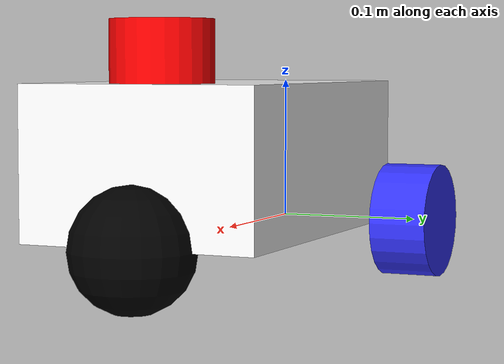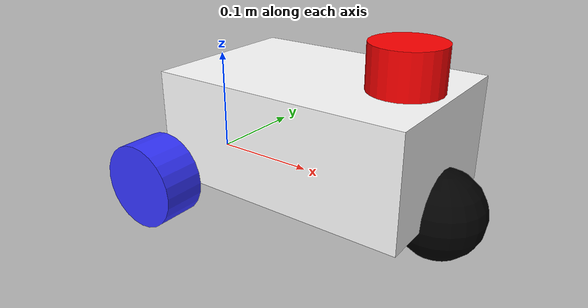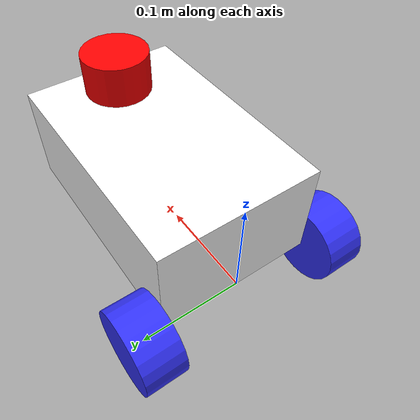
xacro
<?xml version="1.0"?>
<robot xmlns:xacro="http://www.ros.org/wiki/xacro"  >

    <xacro:include filename="inertial_macros.xacro"/>

    <material name="white">
        <color rgba = "1 1 1 1" />
    </material>

    <material name="orange">
        <color rgba = "1 0.3 0.1 1" />
    </material>

    <material name="blue">
        <color rgba = "0.2 0.2 1 1" />
    </material>

    <material name="black">
        <color rgba = "0 0 0 1" />
    </material>

    <material name="red">
        <color rgba = "1 0 0 1" />
    </material>

    <link name="base_link">

    </link>

    <!-- BASE_FOOTPRINT LINK -->

    <joint name="base_footprint_joint" type="fixed">
        <parent link="base_link"/>
        <child link="base_footprint"/>
        <origin xyz="0 0 0" rpy="0 0 0"/>
    </joint>

    <link name="base_footprint">
    </link>

    <joint name="chassis_joint" type="fixed">
        <parent link="base_link"/>
        <child link="chassis"/>
        <origin xyz="0 0 0"/> <!--investigar para roboracecar-->
    </joint>

    <link name="chassis">
        <visual>
            <origin xyz="0.12 0 0.05"/>
            <geometry>
                <box size="0.24 0.16 0.10"/>
            </geometry>
            <material name="white"/>
        </visual>
        <collision>
            <origin xyz="0.12 0 0.05"/>
            <geometry>
                <box size="0.24 0.16 0.10"/>
            </geometry>
        </collision>
        <xacro:inertial_box mass="0.5" x="0.24" y="0.16" z="0.10">
            <origin xyz="0.12 0 0.05" rpy="0 0 0"/>
        </xacro:inertial_box>
    </link>

    <gazebo reference="chassis">
        <material>Gazebo/White</material>
    </gazebo>

    <!--RUEDAS TRASERAS-->

    <joint name="left_wheel_joint" type="continuous">
        <parent link="base_link"/>
        <child link="left_wheel"/>
        <origin xyz="0 0.10 0" rpy="-${pi/2} 0 0"/>
        <axis xyz="0 0 1"/>
    </joint>

    <link name="left_wheel">
        <visual>
            <geometry>
                <cylinder radius="0.04" length="0.04"/>
            </geometry>
            <material name="blue"/>
        </visual>
        <collision>
            <geometry>
                <sphere radius="0.04"/>
            </geometry>
        </collision>
        <xacro:inertial_cylinder mass="0.1" length="0.04" radius="0.04">
            <origin xyz="0 0 0" rpy="0 0 0"/>
        </xacro:inertial_cylinder>
    </link>

    <gazebo reference="left_wheel">
        <material>Gazebo/Blue</material>
    </gazebo>

    <joint name="right_wheel_joint" type="continuous">
        <parent link="base_link"/>
        <child link="right_wheel"/>
        <origin xyz="0 -0.10 0" rpy="${pi/2} 0 0"/>
        <axis xyz="0 0 -1"/>
    </joint>

    <link name="right_wheel">
        <visual>
            <geometry>
                <cylinder radius="0.04" length="0.04"/>
            </geometry>
            <material name="blue"/>
        </visual>
        <collision>
            <geometry>
                <sphere radius="0.04"/>
            </geometry>
        </collision>
        <xacro:inertial_cylinder mass="0.1" length="0.04" radius="0.04">
            <origin xyz="0 0 0" rpy="0 0 0"/>
        </xacro:inertial_cylinder>
    </link>

    <gazebo reference="right_wheel">
        <material>Gazebo/Blue</material>
    </gazebo>

    <!-- CASTER WHEEL LINK -->

    <joint name="caster_wheel_joint" type="fixed">
        <parent link="chassis"/>
        <child link="caster_wheel"/>
        <origin xyz="0.24 0 0"/>
    </joint>

    <link name="caster_wheel">
        <visual>
            <geometry>
                <sphere radius="0.04"/>
            </geometry>
            <material name="black"/>
        </visual>
        <collision>
            <geometry>
                <sphere radius="0.04"/>
            </geometry>
        </collision>
        <xacro:inertial_sphere mass="0.1" radius="0.04">
            <origin xyz="0.18 0 0" rpy="0 0 0"/>
        </xacro:inertial_sphere>
    </link>

    <gazebo reference="caster_wheel">
        <material>Gazebo/Black</material>
        <mu1 value="0.001"/>
        <mu2 value="0.001"/>
    </gazebo>

    <!--LIDAR-->
    <joint name="laser_joint" type="fixed">
        <parent link="chassis"/>
        <child link="laser_frame"/>
        <origin xyz="0.2 0 0.12" rpy="0 0 0"/>
    </joint>

    <link name="laser_frame">
        <visual>
            <geometry>
                <cylinder radius="0.033" length="0.04"/>
            </geometry>
            <material name="red"/>
        </visual>
        <collision>
            <geometry>
                <cylinder radius="0.033" length="0.04"/>
            </geometry>
        </collision>
        <xacro:inertial_cylinder mass="0.19" length="0.04" radius="0.033">
            <origin xyz="0 0 0" rpy="0 0 0"/>
        </xacro:inertial_cylinder>
    </link>

    <gazebo reference="laser_frame">
        <material>Gazebo/Red</material>

        <sensor name="laser" type="ray">
            <pose> 0 0 0 0 0 0 </pose>
            <visualize>true</visualize>
            <update_rate>10</update_rate>
            <ray>
                <scan>
                    <horizontal>
                        <samples>360</samples>
                        <min_angle>-3.14</min_angle>
                        <max_angle>3.14</max_angle>
                    </horizontal>
                </scan>
                <range>
                    <min>0.3</min>
                    <max>12</max>
                </range>
            </ray>
            <plugin name="laser_controller" filename="libgazebo_ros_ray_sensor.so">
                <ros>
                    <argument>~/out:=scan</argument>
                </ros>
                <output_type>sensor_msgs/LaserScan</output_type>
                <frame_name>laser_frame</frame_name>
            </plugin>
        </sensor>
    </gazebo>

</robot>
